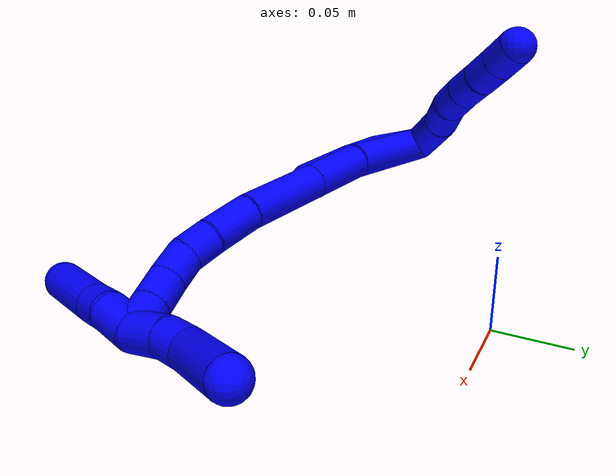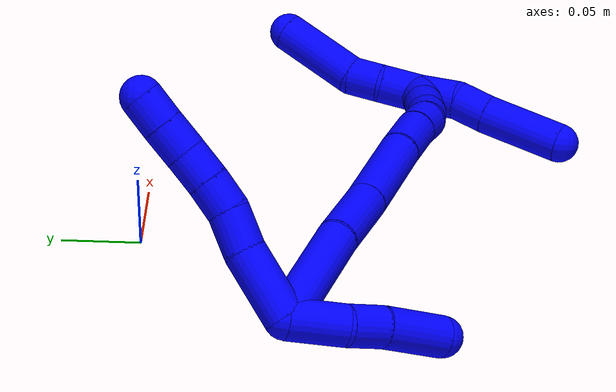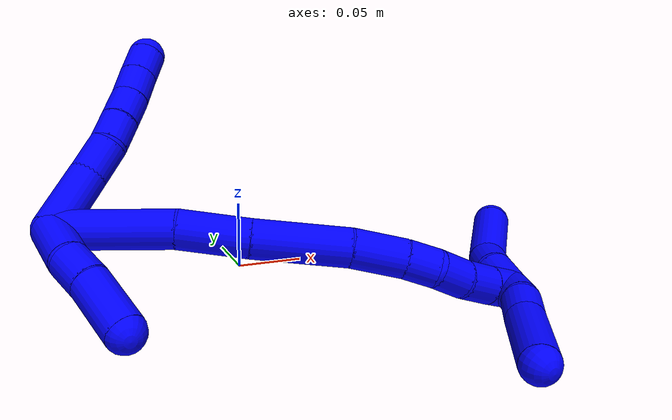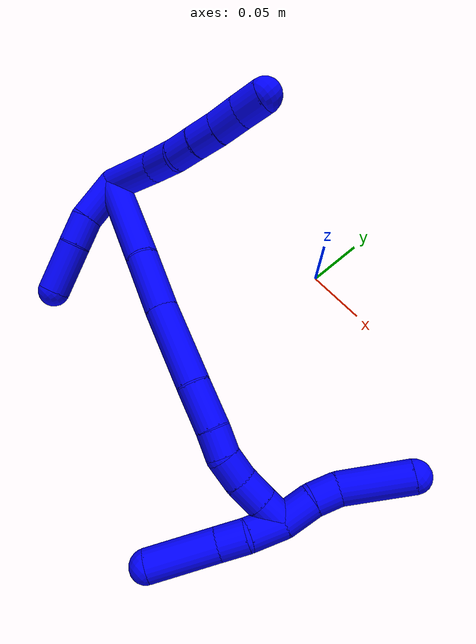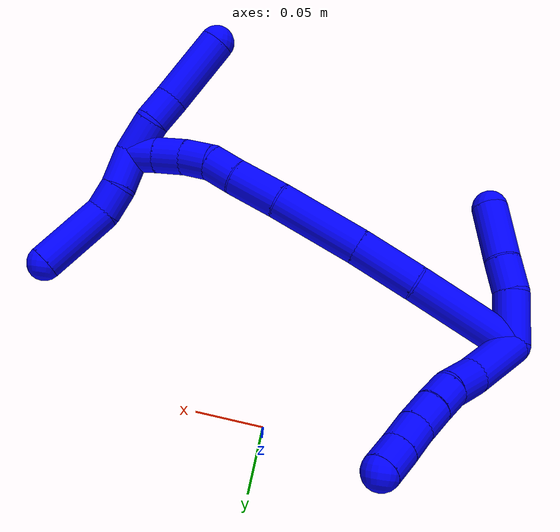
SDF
<sdf version="1.7">
 <world name="default">
  <model name="1">
   <static>0</static>
   <link name="1">
    <collision name="collision-cylinder-e_1_2_8">
     <pose>0.014726 0.011237 -0.012282 -2.4006 0.724246 -1.54576</pose>
     <geometry><cylinder><radius>0.0125</radius><length>0.044452</length></cylinder></geometry>
     <surface>
      <friction><ode><mu>1.16</mu><mu2>1.16</mu2><slip1>0</slip1><slip2>0</slip2></ode></friction>
      <contact><ode><kp>1e+06</kp><kd>1</kd><max_vel>0</max_vel><min_depth>0.001</min_depth></ode></contact>
     </surface>
    </collision>
    <visual name="visual-cylinder-e_1_2_8">
     <pose>0.014726 0.011237 -0.012282 -2.4006 0.724246 -1.54576</pose>
     <geometry><cylinder><radius>0.0125</radius><length>0.044452</length></cylinder></geometry>
     <material><ambient>0 0 1 1</ambient></material>
    </visual>
    <collision name="collision-cylinder-e_2_8_9">
     <pose>0.037775 0.030068 -0.029712 -2.16645 0.736786 -1.25849</pose>
     <geometry><cylinder><radius>0.0125</radius><length>0.024773</length></cylinder></geometry>
     <surface>
      <friction><ode><mu>1.16</mu><mu2>1.16</mu2><slip1>0</slip1><slip2>0</slip2></ode></friction>
      <contact><ode><kp>1e+06</kp><kd>1</kd><max_vel>0</max_vel><min_depth>0.001</min_depth></ode></contact>
     </surface>
    </collision>
    <visual name="visual-cylinder-e_2_8_9">
     <pose>0.037775 0.030068 -0.029712 -2.16645 0.736786 -1.25849</pose>
     <geometry><cylinder><radius>0.0125</radius><length>0.024773</length></cylinder></geometry>
     <material><ambient>0 0 1 1</ambient></material>
    </visual>
    <collision name="collision-cylinder-e_3_9_10">
     <pose>0.051733 0.043249 -0.041029 -2.40584 0.595094 -1.34414</pose>
     <geometry><cylinder><radius>0.0125</radius><length>0.020103</length></cylinder></geometry>
     <surface>
      <friction><ode><mu>1.16</mu><mu2>1.16</mu2><slip1>0</slip1><slip2>0</slip2></ode></friction>
      <contact><ode><kp>1e+06</kp><kd>1</kd><max_vel>0</max_vel><min_depth>0.001</min_depth></ode></contact>
     </surface>
    </collision>
    <visual name="visual-cylinder-e_3_9_10">
     <pose>0.051733 0.043249 -0.041029 -2.40584 0.595094 -1.34414</pose>
     <geometry><cylinder><radius>0.0125</radius><length>0.020103</length></cylinder></geometry>
     <material><ambient>0 0 1 1</ambient></material>
    </visual>
    <collision name="collision-cylinder-e_4_10_11">
     <pose>0.062924 0.054044 -0.053878 -2.47911 0.580637 -1.43051</pose>
     <geometry><cylinder><radius>0.0125</radius><length>0.020259</length></cylinder></geometry>
     <surface>
      <friction><ode><mu>1.16</mu><mu2>1.16</mu2><slip1>0</slip1><slip2>0</slip2></ode></friction>
      <contact><ode><kp>1e+06</kp><kd>1</kd><max_vel>0</max_vel><min_depth>0.001</min_depth></ode></contact>
     </surface>
    </collision>
    <visual name="visual-cylinder-e_4_10_11">
     <pose>0.062924 0.054044 -0.053878 -2.47911 0.580637 -1.43051</pose>
     <geometry><cylinder><radius>0.0125</radius><length>0.020259</length></cylinder></geometry>
     <material><ambient>0 0 1 1</ambient></material>
    </visual>
    <collision name="collision-cylinder-e_5_11_12">
     <pose>0.073558 0.064812 -0.067427 -2.46143 0.521463 -1.29219</pose>
     <geometry><cylinder><radius>0.0125</radius><length>0.020386</length></cylinder></geometry>
     <surface>
      <friction><ode><mu>1.16</mu><mu2>1.16</mu2><slip1>0</slip1><slip2>0</slip2></ode></friction>
      <contact><ode><kp>1e+06</kp><kd>1</kd><max_vel>0</max_vel><min_depth>0.001</min_depth></ode></contact>
     </surface>
    </collision>
    <visual name="visual-cylinder-e_5_11_12">
     <pose>0.073558 0.064812 -0.067427 -2.46143 0.521463 -1.29219</pose>
     <geometry><cylinder><radius>0.0125</radius><length>0.020386</length></cylinder></geometry>
     <material><ambient>0 0 1 1</ambient></material>
    </visual>
    <collision name="collision-cylinder-e_6_12_6">
     <pose>0.083867 0.0759 -0.080805 -2.43723 0.549691 -1.30896</pose>
     <geometry><cylinder><radius>0.0125</radius><length>0.020027</length></cylinder></geometry>
     <surface>
      <friction><ode><mu>1.16</mu><mu2>1.16</mu2><slip1>0</slip1><slip2>0</slip2></ode></friction>
      <contact><ode><kp>1e+06</kp><kd>1</kd><max_vel>0</max_vel><min_depth>0.001</min_depth></ode></contact>
     </surface>
    </collision>
    <visual name="visual-cylinder-e_6_12_6">
     <pose>0.083867 0.0759 -0.080805 -2.43723 0.549691 -1.30896</pose>
     <geometry><cylinder><radius>0.0125</radius><length>0.020027</length></cylinder></geometry>
     <material><ambient>0 0 1 1</ambient></material>
    </visual>
    <collision name="collision-cylinder-e_1_2_13">
     <pose>0.001514 -0.003011 0.017569 0.169739 0.084756 0.007215</pose>
     <geometry><cylinder><radius>0.0125</radius><length>0.035779</length></cylinder></geometry>
     <surface>
      <friction><ode><mu>1.16</mu><mu2>1.16</mu2><slip1>0</slip1><slip2>0</slip2></ode></friction>
      <contact><ode><kp>1e+06</kp><kd>1</kd><max_vel>0</max_vel><min_depth>0.001</min_depth></ode></contact>
     </surface>
    </collision>
    <visual name="visual-cylinder-e_1_2_13">
     <pose>0.001514 -0.003011 0.017569 0.169739 0.084756 0.007215</pose>
     <geometry><cylinder><radius>0.0125</radius><length>0.035779</length></cylinder></geometry>
     <material><ambient>0 0 1 1</ambient></material>
    </visual>
    <collision name="collision-cylinder-e_2_13_14">
     <pose>0.006525 -0.00933 0.046021 0.295091 0.298181 0.044641</pose>
     <geometry><cylinder><radius>0.0125</radius><length>0.023799</length></cylinder></geometry>
     <surface>
      <friction><ode><mu>1.16</mu><mu2>1.16</mu2><slip1>0</slip1><slip2>0</slip2></ode></friction>
      <contact><ode><kp>1e+06</kp><kd>1</kd><max_vel>0</max_vel><min_depth>0.001</min_depth></ode></contact>
     </surface>
    </collision>
    <visual name="visual-cylinder-e_2_13_14">
     <pose>0.006525 -0.00933 0.046021 0.295091 0.298181 0.044641</pose>
     <geometry><cylinder><radius>0.0125</radius><length>0.023799</length></cylinder></geometry>
     <material><ambient>0 0 1 1</ambient></material>
    </visual>
    <collision name="collision-cylinder-e_3_14_5">
     <pose>0.014746 -0.020108 0.07508 0.389926 0.236011 0.046814</pose>
     <geometry><cylinder><radius>0.0125</radius><length>0.040422</length></cylinder></geometry>
     <surface>
      <friction><ode><mu>1.16</mu><mu2>1.16</mu2><slip1>0</slip1><slip2>0</slip2></ode></friction>
      <contact><ode><kp>1e+06</kp><kd>1</kd><max_vel>0</max_vel><min_depth>0.001</min_depth></ode></contact>
     </surface>
    </collision>
    <visual name="visual-cylinder-e_3_14_5">
     <pose>0.014746 -0.020108 0.07508 0.389926 0.236011 0.046814</pose>
     <geometry><cylinder><radius>0.0125</radius><length>0.040422</length></cylinder></geometry>
     <material><ambient>0 0 1 1</ambient></material>
    </visual>
    <collision name="collision-cylinder-e_1_2_15">
     <pose>0.034451 -0.000122 0.015715 0.007749 1.14282 0.004983</pose>
     <geometry><cylinder><radius>0.0125</radius><length>0.075732</length></cylinder></geometry>
     <surface>
      <friction><ode><mu>1.16</mu><mu2>1.16</mu2><slip1>0</slip1><slip2>0</slip2></ode></friction>
      <contact><ode><kp>1e+06</kp><kd>1</kd><max_vel>0</max_vel><min_depth>0.001</min_depth></ode></contact>
     </surface>
    </collision>
    <visual name="visual-cylinder-e_1_2_15">
     <pose>0.034451 -0.000122 0.015715 0.007749 1.14282 0.004983</pose>
     <geometry><cylinder><radius>0.0125</radius><length>0.075732</length></cylinder></geometry>
     <material><ambient>0 0 1 1</ambient></material>
    </visual>
    <collision name="collision-cylinder-e_2_15_16">
     <pose>0.089063 -0.003546 0.040897 0.335609 1.10933 0.209132</pose>
     <geometry><cylinder><radius>0.0125</radius><length>0.045034</length></cylinder></geometry>
     <surface>
      <friction><ode><mu>1.16</mu><mu2>1.16</mu2><slip1>0</slip1><slip2>0</slip2></ode></friction>
      <contact><ode><kp>1e+06</kp><kd>1</kd><max_vel>0</max_vel><min_depth>0.001</min_depth></ode></contact>
     </surface>
    </collision>
    <visual name="visual-cylinder-e_2_15_16">
     <pose>0.089063 -0.003546 0.040897 0.335609 1.10933 0.209132</pose>
     <geometry><cylinder><radius>0.0125</radius><length>0.045034</length></cylinder></geometry>
     <material><ambient>0 0 1 1</ambient></material>
    </visual>
    <collision name="collision-cylinder-e_3_16_17">
     <pose>0.137309 -0.010623 0.062214 0.308378 1.15389 0.201616</pose>
     <geometry><cylinder><radius>0.0125</radius><length>0.061429</length></cylinder></geometry>
     <surface>
      <friction><ode><mu>1.16</mu><mu2>1.16</mu2><slip1>0</slip1><slip2>0</slip2></ode></friction>
      <contact><ode><kp>1e+06</kp><kd>1</kd><max_vel>0</max_vel><min_depth>0.001</min_depth></ode></contact>
     </surface>
    </collision>
    <visual name="visual-cylinder-e_3_16_17">
     <pose>0.137309 -0.010623 0.062214 0.308378 1.15389 0.201616</pose>
     <geometry><cylinder><radius>0.0125</radius><length>0.061429</length></cylinder></geometry>
     <material><ambient>0 0 1 1</ambient></material>
    </visual>
    <collision name="collision-cylinder-e_4_17_18">
     <pose>0.180823 -0.01856 0.080377 0.582917 1.11516 0.369879</pose>
     <geometry><cylinder><radius>0.0125</radius><length>0.034368</length></cylinder></geometry>
     <surface>
      <friction><ode><mu>1.16</mu><mu2>1.16</mu2><slip1>0</slip1><slip2>0</slip2></ode></friction>
      <contact><ode><kp>1e+06</kp><kd>1</kd><max_vel>0</max_vel><min_depth>0.001</min_depth></ode></contact>
     </surface>
    </collision>
    <visual name="visual-cylinder-e_4_17_18">
     <pose>0.180823 -0.01856 0.080377 0.582917 1.11516 0.369879</pose>
     <geometry><cylinder><radius>0.0125</radius><length>0.034368</length></cylinder></geometry>
     <material><ambient>0 0 1 1</ambient></material>
    </visual>
    <collision name="collision-cylinder-e_5_18_19">
     <pose>0.205101 -0.026054 0.090912 0.668141 1.02456 0.385518</pose>
     <geometry><cylinder><radius>0.0125</radius><length>0.020707</length></cylinder></geometry>
     <surface>
      <friction><ode><mu>1.16</mu><mu2>1.16</mu2><slip1>0</slip1><slip2>0</slip2></ode></friction>
      <contact><ode><kp>1e+06</kp><kd>1</kd><max_vel>0</max_vel><min_depth>0.001</min_depth></ode></contact>
     </surface>
    </collision>
    <visual name="visual-cylinder-e_5_18_19">
     <pose>0.205101 -0.026054 0.090912 0.668141 1.02456 0.385518</pose>
     <geometry><cylinder><radius>0.0125</radius><length>0.020707</length></cylinder></geometry>
     <material><ambient>0 0 1 1</ambient></material>
    </visual>
    <collision name="collision-cylinder-e_6_19_20">
     <pose>0.223095 -0.034319 0.096539 1.29329 1.05975 0.832686</pose>
     <geometry><cylinder><radius>0.0125</radius><length>0.020973</length></cylinder></geometry>
     <surface>
      <friction><ode><mu>1.16</mu><mu2>1.16</mu2><slip1>0</slip1><slip2>0</slip2></ode></friction>
      <contact><ode><kp>1e+06</kp><kd>1</kd><max_vel>0</max_vel><min_depth>0.001</min_depth></ode></contact>
     </surface>
    </collision>
    <visual name="visual-cylinder-e_6_19_20">
     <pose>0.223095 -0.034319 0.096539 1.29329 1.05975 0.832686</pose>
     <geometry><cylinder><radius>0.0125</radius><length>0.020973</length></cylinder></geometry>
     <material><ambient>0 0 1 1</ambient></material>
    </visual>
    <collision name="collision-cylinder-e_7_20_21">
     <pose>0.242193 -0.043461 0.097928 1.57461 1.17058 1.17409</pose>
     <geometry><cylinder><radius>0.0125</radius><length>0.021611</length></cylinder></geometry>
     <surface>
      <friction><ode><mu>1.16</mu><mu2>1.16</mu2><slip1>0</slip1><slip2>0</slip2></ode></friction>
      <contact><ode><kp>1e+06</kp><kd>1</kd><max_vel>0</max_vel><min_depth>0.001</min_depth></ode></contact>
     </surface>
    </collision>
    <visual name="visual-cylinder-e_7_20_21">
     <pose>0.242193 -0.043461 0.097928 1.57461 1.17058 1.17409</pose>
     <geometry><cylinder><radius>0.0125</radius><length>0.021611</length></cylinder></geometry>
     <material><ambient>0 0 1 1</ambient></material>
    </visual>
    <collision name="collision-cylinder-e_8_21_1">
     <pose>0.261501 -0.051388 0.097571 1.66241 1.1912 1.27778</pose>
     <geometry><cylinder><radius>0.0125</radius><length>0.020146</length></cylinder></geometry>
     <surface>
      <friction><ode><mu>1.16</mu><mu2>1.16</mu2><slip1>0</slip1><slip2>0</slip2></ode></friction>
      <contact><ode><kp>1e+06</kp><kd>1</kd><max_vel>0</max_vel><min_depth>0.001</min_depth></ode></contact>
     </surface>
    </collision>
    <visual name="visual-cylinder-e_8_21_1">
     <pose>0.261501 -0.051388 0.097571 1.66241 1.1912 1.27778</pose>
     <geometry><cylinder><radius>0.0125</radius><length>0.020146</length></cylinder></geometry>
     <material><ambient>0 0 1 1</ambient></material>
    </visual>
    <collision name="collision-cylinder-e_1_1_22">
     <pose>0.265547 -0.052586 0.109187 -0.207603 -0.409905 0.043304</pose>
     <geometry><cylinder><radius>0.0125</radius><length>0.026647</length></cylinder></geometry>
     <surface>
      <friction><ode><mu>1.16</mu><mu2>1.16</mu2><slip1>0</slip1><slip2>0</slip2></ode></friction>
      <contact><ode><kp>1e+06</kp><kd>1</kd><max_vel>0</max_vel><min_depth>0.001</min_depth></ode></contact>
     </surface>
    </collision>
    <visual name="visual-cylinder-e_1_1_22">
     <pose>0.265547 -0.052586 0.109187 -0.207603 -0.409905 0.043304</pose>
     <geometry><cylinder><radius>0.0125</radius><length>0.026647</length></cylinder></geometry>
     <material><ambient>0 0 1 1</ambient></material>
    </visual>
    <collision name="collision-cylinder-e_2_22_23">
     <pose>0.254817 -0.050811 0.130379 0.080343 -0.529288 -0.021784</pose>
     <geometry><cylinder><radius>0.0125</radius><length>0.021467</length></cylinder></geometry>
     <surface>
      <friction><ode><mu>1.16</mu><mu2>1.16</mu2><slip1>0</slip1><slip2>0</slip2></ode></friction>
      <contact><ode><kp>1e+06</kp><kd>1</kd><max_vel>0</max_vel><min_depth>0.001</min_depth></ode></contact>
     </surface>
    </collision>
    <visual name="visual-cylinder-e_2_22_23">
     <pose>0.254817 -0.050811 0.130379 0.080343 -0.529288 -0.021784</pose>
     <geometry><cylinder><radius>0.0125</radius><length>0.021467</length></cylinder></geometry>
     <material><ambient>0 0 1 1</ambient></material>
    </visual>
    <collision name="collision-cylinder-e_3_23_4">
     <pose>0.236581 -0.051113 0.162166 -0.019588 -0.516737 0.005177</pose>
     <geometry><cylinder><radius>0.0125</radius><length>0.051885</length></cylinder></geometry>
     <surface>
      <friction><ode><mu>1.16</mu><mu2>1.16</mu2><slip1>0</slip1><slip2>0</slip2></ode></friction>
      <contact><ode><kp>1e+06</kp><kd>1</kd><max_vel>0</max_vel><min_depth>0.001</min_depth></ode></contact>
     </surface>
    </collision>
    <visual name="visual-cylinder-e_3_23_4">
     <pose>0.236581 -0.051113 0.162166 -0.019588 -0.516737 0.005177</pose>
     <geometry><cylinder><radius>0.0125</radius><length>0.051885</length></cylinder></geometry>
     <material><ambient>0 0 1 1</ambient></material>
    </visual>
    <collision name="collision-cylinder-e_1_1_24">
     <pose>0.273639 -0.054055 0.08451 -3.05925 0.214673 -2.4113</pose>
     <geometry><cylinder><radius>0.0125</radius><length>0.026125</length></cylinder></geometry>
     <surface>
      <friction><ode><mu>1.16</mu><mu2>1.16</mu2><slip1>0</slip1><slip2>0</slip2></ode></friction>
      <contact><ode><kp>1e+06</kp><kd>1</kd><max_vel>0</max_vel><min_depth>0.001</min_depth></ode></contact>
     </surface>
    </collision>
    <visual name="visual-cylinder-e_1_1_24">
     <pose>0.273639 -0.054055 0.08451 -3.05925 0.214673 -2.4113</pose>
     <geometry><cylinder><radius>0.0125</radius><length>0.026125</length></cylinder></geometry>
     <material><ambient>0 0 1 1</ambient></material>
    </visual>
    <collision name="collision-cylinder-e_2_24_25">
     <pose>0.280357 -0.053688 0.062412 3.06898 0.396311 2.78366</pose>
     <geometry><cylinder><radius>0.0125</radius><length>0.020388</length></cylinder></geometry>
     <surface>
      <friction><ode><mu>1.16</mu><mu2>1.16</mu2><slip1>0</slip1><slip2>0</slip2></ode></friction>
      <contact><ode><kp>1e+06</kp><kd>1</kd><max_vel>0</max_vel><min_depth>0.001</min_depth></ode></contact>
     </surface>
    </collision>
    <visual name="visual-cylinder-e_2_24_25">
     <pose>0.280357 -0.053688 0.062412 3.06898 0.396311 2.78366</pose>
     <geometry><cylinder><radius>0.0125</radius><length>0.020388</length></cylinder></geometry>
     <material><ambient>0 0 1 1</ambient></material>
    </visual>
    <collision name="collision-cylinder-e_3_25_3">
     <pose>0.300799 -0.050886 0.032282 -2.97524 0.665228 -2.66798</pose>
     <geometry><cylinder><radius>0.0125</radius><length>0.053487</length></cylinder></geometry>
     <surface>
      <friction><ode><mu>1.16</mu><mu2>1.16</mu2><slip1>0</slip1><slip2>0</slip2></ode></friction>
      <contact><ode><kp>1e+06</kp><kd>1</kd><max_vel>0</max_vel><min_depth>0.001</min_depth></ode></contact>
     </surface>
    </collision>
    <visual name="visual-cylinder-e_3_25_3">
     <pose>0.300799 -0.050886 0.032282 -2.97524 0.665228 -2.66798</pose>
     <geometry><cylinder><radius>0.0125</radius><length>0.053487</length></cylinder></geometry>
     <material><ambient>0 0 1 1</ambient></material>
    </visual>
    <collision name="collision-sphere-3">
     <pose>0.317306 -0.047402 0.011531 0 -0 0</pose>
     <geometry><sphere><radius>0.0125</radius></sphere></geometry>
     <surface>
      <friction><ode><mu>1.16</mu><mu2>1.16</mu2><slip1>0</slip1><slip2>0</slip2></ode></friction>
      <contact><ode><kp>1e+06</kp><kd>1</kd><max_vel>0</max_vel><min_depth>0.001</min_depth></ode></contact>
     </surface>
    </collision>
    <visual name="visual-sphere-3">
     <pose>0.317306 -0.047402 0.011531 0 -0 0</pose>
     <geometry><sphere><radius>0.0125</radius></sphere></geometry>
     <material><ambient>0 0 1 1</ambient></material>
    </visual>
    <collision name="collision-sphere-25">
     <pose>0.284292 -0.05437 0.053032 0 -0 0</pose>
     <geometry><sphere><radius>0.0125</radius></sphere></geometry>
     <surface>
      <friction><ode><mu>1.16</mu><mu2>1.16</mu2><slip1>0</slip1><slip2>0</slip2></ode></friction>
      <contact><ode><kp>1e+06</kp><kd>1</kd><max_vel>0</max_vel><min_depth>0.001</min_depth></ode></contact>
     </surface>
    </collision>
    <visual name="visual-sphere-25">
     <pose>0.284292 -0.05437 0.053032 0 -0 0</pose>
     <geometry><sphere><radius>0.0125</radius></sphere></geometry>
     <material><ambient>0 0 1 1</ambient></material>
    </visual>
    <collision name="collision-sphere-24">
     <pose>0.276422 -0.053006 0.071791 0 -0 0</pose>
     <geometry><sphere><radius>0.0125</radius></sphere></geometry>
     <surface>
      <friction><ode><mu>1.16</mu><mu2>1.16</mu2><slip1>0</slip1><slip2>0</slip2></ode></friction>
      <contact><ode><kp>1e+06</kp><kd>1</kd><max_vel>0</max_vel><min_depth>0.001</min_depth></ode></contact>
     </surface>
    </collision>
    <visual name="visual-sphere-24">
     <pose>0.276422 -0.053006 0.071791 0 -0 0</pose>
     <geometry><sphere><radius>0.0125</radius></sphere></geometry>
     <material><ambient>0 0 1 1</ambient></material>
    </visual>
    <collision name="collision-sphere-4">
     <pose>0.223764 -0.050671 0.184717 0 -0 0</pose>
     <geometry><sphere><radius>0.0125</radius></sphere></geometry>
     <surface>
      <friction><ode><mu>1.16</mu><mu2>1.16</mu2><slip1>0</slip1><slip2>0</slip2></ode></friction>
      <contact><ode><kp>1e+06</kp><kd>1</kd><max_vel>0</max_vel><min_depth>0.001</min_depth></ode></contact>
     </surface>
    </collision>
    <visual name="visual-sphere-4">
     <pose>0.223764 -0.050671 0.184717 0 -0 0</pose>
     <geometry><sphere><radius>0.0125</radius></sphere></geometry>
     <material><ambient>0 0 1 1</ambient></material>
    </visual>
    <collision name="collision-sphere-23">
     <pose>0.249398 -0.051555 0.139615 0 -0 0</pose>
     <geometry><sphere><radius>0.0125</radius></sphere></geometry>
     <surface>
      <friction><ode><mu>1.16</mu><mu2>1.16</mu2><slip1>0</slip1><slip2>0</slip2></ode></friction>
      <contact><ode><kp>1e+06</kp><kd>1</kd><max_vel>0</max_vel><min_depth>0.001</min_depth></ode></contact>
     </surface>
    </collision>
    <visual name="visual-sphere-23">
     <pose>0.249398 -0.051555 0.139615 0 -0 0</pose>
     <geometry><sphere><radius>0.0125</radius></sphere></geometry>
     <material><ambient>0 0 1 1</ambient></material>
    </visual>
    <collision name="collision-sphere-22">
     <pose>0.260237 -0.050068 0.121144 0 -0 0</pose>
     <geometry><sphere><radius>0.0125</radius></sphere></geometry>
     <surface>
      <friction><ode><mu>1.16</mu><mu2>1.16</mu2><slip1>0</slip1><slip2>0</slip2></ode></friction>
      <contact><ode><kp>1e+06</kp><kd>1</kd><max_vel>0</max_vel><min_depth>0.001</min_depth></ode></contact>
     </surface>
    </collision>
    <visual name="visual-sphere-22">
     <pose>0.260237 -0.050068 0.121144 0 -0 0</pose>
     <geometry><sphere><radius>0.0125</radius></sphere></geometry>
     <material><ambient>0 0 1 1</ambient></material>
    </visual>
    <collision name="collision-sphere-1">
     <pose>0.270856 -0.055105 0.097229 0 -0 0</pose>
     <geometry><sphere><radius>0.0125</radius></sphere></geometry>
     <surface>
      <friction><ode><mu>1.16</mu><mu2>1.16</mu2><slip1>0</slip1><slip2>0</slip2></ode></friction>
      <contact><ode><kp>1e+06</kp><kd>1</kd><max_vel>0</max_vel><min_depth>0.001</min_depth></ode></contact>
     </surface>
    </collision>
    <visual name="visual-sphere-1">
     <pose>0.270856 -0.055105 0.097229 0 -0 0</pose>
     <geometry><sphere><radius>0.0125</radius></sphere></geometry>
     <material><ambient>0 0 1 1</ambient></material>
    </visual>
    <collision name="collision-sphere-21">
     <pose>0.252145 -0.047671 0.097912 0 -0 0</pose>
     <geometry><sphere><radius>0.0125</radius></sphere></geometry>
     <surface>
      <friction><ode><mu>1.16</mu><mu2>1.16</mu2><slip1>0</slip1><slip2>0</slip2></ode></friction>
      <contact><ode><kp>1e+06</kp><kd>1</kd><max_vel>0</max_vel><min_depth>0.001</min_depth></ode></contact>
     </surface>
    </collision>
    <visual name="visual-sphere-21">
     <pose>0.252145 -0.047671 0.097912 0 -0 0</pose>
     <geometry><sphere><radius>0.0125</radius></sphere></geometry>
     <material><ambient>0 0 1 1</ambient></material>
    </visual>
    <collision name="collision-sphere-12">
     <pose>0.078636 0.070371 -0.074298 0 -0 0</pose>
     <geometry><sphere><radius>0.0125</radius></sphere></geometry>
     <surface>
      <friction><ode><mu>1.16</mu><mu2>1.16</mu2><slip1>0</slip1><slip2>0</slip2></ode></friction>
      <contact><ode><kp>1e+06</kp><kd>1</kd><max_vel>0</max_vel><min_depth>0.001</min_depth></ode></contact>
     </surface>
    </collision>
    <visual name="visual-sphere-12">
     <pose>0.078636 0.070371 -0.074298 0 -0 0</pose>
     <geometry><sphere><radius>0.0125</radius></sphere></geometry>
     <material><ambient>0 0 1 1</ambient></material>
    </visual>
    <collision name="collision-sphere-11">
     <pose>0.068481 0.059254 -0.060556 0 -0 0</pose>
     <geometry><sphere><radius>0.0125</radius></sphere></geometry>
     <surface>
      <friction><ode><mu>1.16</mu><mu2>1.16</mu2><slip1>0</slip1><slip2>0</slip2></ode></friction>
      <contact><ode><kp>1e+06</kp><kd>1</kd><max_vel>0</max_vel><min_depth>0.001</min_depth></ode></contact>
     </surface>
    </collision>
    <visual name="visual-sphere-11">
     <pose>0.068481 0.059254 -0.060556 0 -0 0</pose>
     <geometry><sphere><radius>0.0125</radius></sphere></geometry>
     <material><ambient>0 0 1 1</ambient></material>
    </visual>
    <collision name="collision-sphere-10">
     <pose>0.057367 0.048835 -0.0472 0 -0 0</pose>
     <geometry><sphere><radius>0.0125</radius></sphere></geometry>
     <surface>
      <friction><ode><mu>1.16</mu><mu2>1.16</mu2><slip1>0</slip1><slip2>0</slip2></ode></friction>
      <contact><ode><kp>1e+06</kp><kd>1</kd><max_vel>0</max_vel><min_depth>0.001</min_depth></ode></contact>
     </surface>
    </collision>
    <visual name="visual-sphere-10">
     <pose>0.057367 0.048835 -0.0472 0 -0 0</pose>
     <geometry><sphere><radius>0.0125</radius></sphere></geometry>
     <material><ambient>0 0 1 1</ambient></material>
    </visual>
    <collision name="collision-sphere-9">
     <pose>0.046098 0.037662 -0.034859 0 -0 0</pose>
     <geometry><sphere><radius>0.0125</radius></sphere></geometry>
     <surface>
      <friction><ode><mu>1.16</mu><mu2>1.16</mu2><slip1>0</slip1><slip2>0</slip2></ode></friction>
      <contact><ode><kp>1e+06</kp><kd>1</kd><max_vel>0</max_vel><min_depth>0.001</min_depth></ode></contact>
     </surface>
    </collision>
    <visual name="visual-sphere-9">
     <pose>0.046098 0.037662 -0.034859 0 -0 0</pose>
     <geometry><sphere><radius>0.0125</radius></sphere></geometry>
     <material><ambient>0 0 1 1</ambient></material>
    </visual>
    <collision name="collision-sphere-2">
     <geometry><sphere><radius>0.0125</radius></sphere></geometry>
     <surface>
      <friction><ode><mu>1.16</mu><mu2>1.16</mu2><slip1>0</slip1><slip2>0</slip2></ode></friction>
      <contact><ode><kp>1e+06</kp><kd>1</kd><max_vel>0</max_vel><min_depth>0.001</min_depth></ode></contact>
     </surface>
    </collision>
    <visual name="visual-sphere-2">
     <geometry><sphere><radius>0.0125</radius></sphere></geometry>
     <material><ambient>0 0 1 1</ambient></material>
    </visual>
    <collision name="collision-sphere-19">
     <pose>0.213948 -0.029386 0.095134 0 -0 0</pose>
     <geometry><sphere><radius>0.0125</radius></sphere></geometry>
     <surface>
      <friction><ode><mu>1.16</mu><mu2>1.16</mu2><slip1>0</slip1><slip2>0</slip2></ode></friction>
      <contact><ode><kp>1e+06</kp><kd>1</kd><max_vel>0</max_vel><min_depth>0.001</min_depth></ode></contact>
     </surface>
    </collision>
    <visual name="visual-sphere-19">
     <pose>0.213948 -0.029386 0.095134 0 -0 0</pose>
     <geometry><sphere><radius>0.0125</radius></sphere></geometry>
     <material><ambient>0 0 1 1</ambient></material>
    </visual>
    <collision name="collision-sphere-8">
     <pose>0.029453 0.022474 -0.024565 0 -0 0</pose>
     <geometry><sphere><radius>0.0125</radius></sphere></geometry>
     <surface>
      <friction><ode><mu>1.16</mu><mu2>1.16</mu2><slip1>0</slip1><slip2>0</slip2></ode></friction>
      <contact><ode><kp>1e+06</kp><kd>1</kd><max_vel>0</max_vel><min_depth>0.001</min_depth></ode></contact>
     </surface>
    </collision>
    <visual name="visual-sphere-8">
     <pose>0.029453 0.022474 -0.024565 0 -0 0</pose>
     <geometry><sphere><radius>0.0125</radius></sphere></geometry>
     <material><ambient>0 0 1 1</ambient></material>
    </visual>
    <collision name="collision-sphere-6">
     <pose>0.089098 0.081429 -0.087311 0 -0 0</pose>
     <geometry><sphere><radius>0.0125</radius></sphere></geometry>
     <surface>
      <friction><ode><mu>1.16</mu><mu2>1.16</mu2><slip1>0</slip1><slip2>0</slip2></ode></friction>
      <contact><ode><kp>1e+06</kp><kd>1</kd><max_vel>0</max_vel><min_depth>0.001</min_depth></ode></contact>
     </surface>
    </collision>
    <visual name="visual-sphere-6">
     <pose>0.089098 0.081429 -0.087311 0 -0 0</pose>
     <geometry><sphere><radius>0.0125</radius></sphere></geometry>
     <material><ambient>0 0 1 1</ambient></material>
    </visual>
    <collision name="collision-sphere-13">
     <pose>0.003029 -0.006022 0.035139 0 -0 0</pose>
     <geometry><sphere><radius>0.0125</radius></sphere></geometry>
     <surface>
      <friction><ode><mu>1.16</mu><mu2>1.16</mu2><slip1>0</slip1><slip2>0</slip2></ode></friction>
      <contact><ode><kp>1e+06</kp><kd>1</kd><max_vel>0</max_vel><min_depth>0.001</min_depth></ode></contact>
     </surface>
    </collision>
    <visual name="visual-sphere-13">
     <pose>0.003029 -0.006022 0.035139 0 -0 0</pose>
     <geometry><sphere><radius>0.0125</radius></sphere></geometry>
     <material><ambient>0 0 1 1</ambient></material>
    </visual>
    <collision name="collision-sphere-14">
     <pose>0.010021 -0.012638 0.056904 0 -0 0</pose>
     <geometry><sphere><radius>0.0125</radius></sphere></geometry>
     <surface>
      <friction><ode><mu>1.16</mu><mu2>1.16</mu2><slip1>0</slip1><slip2>0</slip2></ode></friction>
      <contact><ode><kp>1e+06</kp><kd>1</kd><max_vel>0</max_vel><min_depth>0.001</min_depth></ode></contact>
     </surface>
    </collision>
    <visual name="visual-sphere-14">
     <pose>0.010021 -0.012638 0.056904 0 -0 0</pose>
     <geometry><sphere><radius>0.0125</radius></sphere></geometry>
     <material><ambient>0 0 1 1</ambient></material>
    </visual>
    <collision name="collision-sphere-5">
     <pose>0.019472 -0.027577 0.093255 0 -0 0</pose>
     <geometry><sphere><radius>0.0125</radius></sphere></geometry>
     <surface>
      <friction><ode><mu>1.16</mu><mu2>1.16</mu2><slip1>0</slip1><slip2>0</slip2></ode></friction>
      <contact><ode><kp>1e+06</kp><kd>1</kd><max_vel>0</max_vel><min_depth>0.001</min_depth></ode></contact>
     </surface>
    </collision>
    <visual name="visual-sphere-5">
     <pose>0.019472 -0.027577 0.093255 0 -0 0</pose>
     <geometry><sphere><radius>0.0125</radius></sphere></geometry>
     <material><ambient>0 0 1 1</ambient></material>
    </visual>
    <collision name="collision-sphere-15">
     <pose>0.068901 -0.000244 0.03143 0 -0 0</pose>
     <geometry><sphere><radius>0.0125</radius></sphere></geometry>
     <surface>
      <friction><ode><mu>1.16</mu><mu2>1.16</mu2><slip1>0</slip1><slip2>0</slip2></ode></friction>
      <contact><ode><kp>1e+06</kp><kd>1</kd><max_vel>0</max_vel><min_depth>0.001</min_depth></ode></contact>
     </surface>
    </collision>
    <visual name="visual-sphere-15">
     <pose>0.068901 -0.000244 0.03143 0 -0 0</pose>
     <geometry><sphere><radius>0.0125</radius></sphere></geometry>
     <material><ambient>0 0 1 1</ambient></material>
    </visual>
    <collision name="collision-sphere-16">
     <pose>0.109225 -0.006848 0.050364 0 -0 0</pose>
     <geometry><sphere><radius>0.0125</radius></sphere></geometry>
     <surface>
      <friction><ode><mu>1.16</mu><mu2>1.16</mu2><slip1>0</slip1><slip2>0</slip2></ode></friction>
      <contact><ode><kp>1e+06</kp><kd>1</kd><max_vel>0</max_vel><min_depth>0.001</min_depth></ode></contact>
     </surface>
    </collision>
    <visual name="visual-sphere-16">
     <pose>0.109225 -0.006848 0.050364 0 -0 0</pose>
     <geometry><sphere><radius>0.0125</radius></sphere></geometry>
     <material><ambient>0 0 1 1</ambient></material>
    </visual>
    <collision name="collision-sphere-17">
     <pose>0.165392 -0.014397 0.074065 0 -0 0</pose>
     <geometry><sphere><radius>0.0125</radius></sphere></geometry>
     <surface>
      <friction><ode><mu>1.16</mu><mu2>1.16</mu2><slip1>0</slip1><slip2>0</slip2></ode></friction>
      <contact><ode><kp>1e+06</kp><kd>1</kd><max_vel>0</max_vel><min_depth>0.001</min_depth></ode></contact>
     </surface>
    </collision>
    <visual name="visual-sphere-17">
     <pose>0.165392 -0.014397 0.074065 0 -0 0</pose>
     <geometry><sphere><radius>0.0125</radius></sphere></geometry>
     <material><ambient>0 0 1 1</ambient></material>
    </visual>
    <collision name="collision-sphere-18">
     <pose>0.196254 -0.022722 0.08669 0 -0 0</pose>
     <geometry><sphere><radius>0.0125</radius></sphere></geometry>
     <surface>
      <friction><ode><mu>1.16</mu><mu2>1.16</mu2><slip1>0</slip1><slip2>0</slip2></ode></friction>
      <contact><ode><kp>1e+06</kp><kd>1</kd><max_vel>0</max_vel><min_depth>0.001</min_depth></ode></contact>
     </surface>
    </collision>
    <visual name="visual-sphere-18">
     <pose>0.196254 -0.022722 0.08669 0 -0 0</pose>
     <geometry><sphere><radius>0.0125</radius></sphere></geometry>
     <material><ambient>0 0 1 1</ambient></material>
    </visual>
    <collision name="collision-sphere-20">
     <pose>0.232242 -0.039252 0.097944 0 -0 0</pose>
     <geometry><sphere><radius>0.0125</radius></sphere></geometry>
     <surface>
      <friction><ode><mu>1.16</mu><mu2>1.16</mu2><slip1>0</slip1><slip2>0</slip2></ode></friction>
      <contact><ode><kp>1e+06</kp><kd>1</kd><max_vel>0</max_vel><min_depth>0.001</min_depth></ode></contact>
     </surface>
    </collision>
    <visual name="visual-sphere-20">
     <pose>0.232242 -0.039252 0.097944 0 -0 0</pose>
     <geometry><sphere><radius>0.0125</radius></sphere></geometry>
     <material><ambient>0 0 1 1</ambient></material>
    </visual>
    <inertial>
     <pose>0.136483 -0.013544 0.047336 0 -0 0</pose>
     <mass>0.75</mass>
     <inertia><ixx>6.7e-05</ixx><ixy>0</ixy><ixz>0</ixz><iyy>0.000121</iyy><iyz>0</iyz><izz>-8e-05</izz></inertia>
    </inertial>
   </link>
   <pose>-0.14715 -0.09868 0.071902 1.6647 -0.054733 0.069686</pose>
  </model>
 </world>
</sdf>
